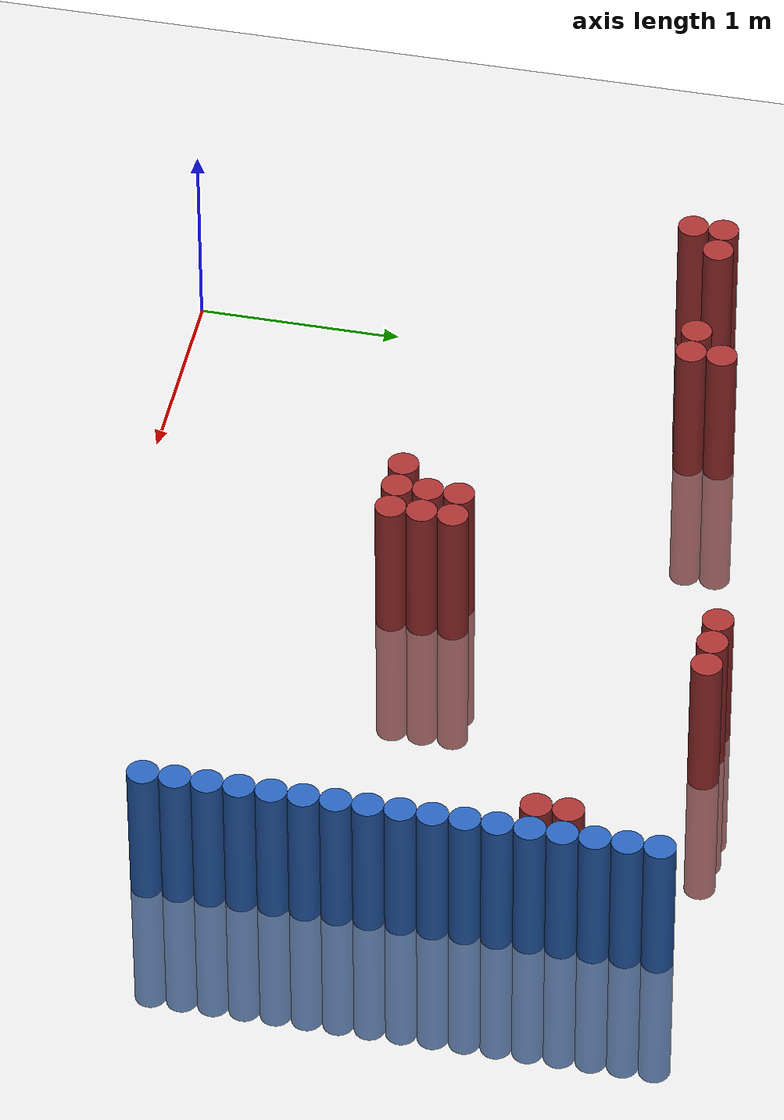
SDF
<sdf version="1.6">
 <world name="default">
  <model name="ground_plane">
   <static>1</static>
   <link name="link">
    <collision name="collision">
     <geometry><plane><normal>0 0 1</normal><size>100 100</size></plane></geometry>
     <surface><friction><ode><mu>100</mu><mu2>50</mu2></ode></friction></surface>
    </collision>
    <visual name="visual">
     <cast_shadows>0</cast_shadows>
     <geometry><plane><normal>0 0 1</normal><size>100 100</size></plane></geometry>
     <material>
      <script><uri>file://media/materials/scripts/gazebo.material</uri><name>Gazebo/Grey</name></script>
     </material>
    </visual>
   </link>
  </model>
  <model name="unit_cylinder_124">
   <static>1</static>
   <pose>3.925000 0.775000 0.000000 0.000000 0.000000 0.000000</pose>
   <link name="link">
    <inertial>
     <mass>1</mass>
     <inertia><ixx>0.145833</ixx><ixy>0</ixy><ixz>0</ixz><iyy>0.145833</iyy><iyz>0</iyz><izz>0.125</izz></inertia>
    </inertial>
    <collision name="collision">
     <geometry><cylinder><radius>0.075000</radius><length>1.5</length></cylinder></geometry>
    </collision>
    <visual name="visual">
     <geometry><cylinder><radius>0.075000</radius><length>1.5</length></cylinder></geometry>
     <material>
      <ambient>0.152000 0.379000 0.720000 1</ambient>
      <diffuse>0.152000 0.379000 0.720000 1</diffuse>
     </material>
     <material>
      <script><name>Gazebo/Grey</name><uri>file://media/materials/scripts/gazebo.material</uri></script>
     </material>
    </visual>
   </link>
  </model>
  <model name="unit_cylinder_126">
   <static>1</static>
   <pose>3.925000 0.925000 0.000000 0.000000 0.000000 0.000000</pose>
   <link name="link">
    <inertial>
     <mass>1</mass>
     <inertia><ixx>0.145833</ixx><ixy>0</ixy><ixz>0</ixz><iyy>0.145833</iyy><iyz>0</iyz><izz>0.125</izz></inertia>
    </inertial>
    <collision name="collision">
     <geometry><cylinder><radius>0.075000</radius><length>1.5</length></cylinder></geometry>
    </collision>
    <visual name="visual">
     <geometry><cylinder><radius>0.075000</radius><length>1.5</length></cylinder></geometry>
     <material>
      <ambient>0.152000 0.379000 0.720000 1</ambient>
      <diffuse>0.152000 0.379000 0.720000 1</diffuse>
     </material>
     <material>
      <script><name>Gazebo/Grey</name><uri>file://media/materials/scripts/gazebo.material</uri></script>
     </material>
    </visual>
   </link>
  </model>
  <model name="unit_cylinder_128">
   <static>1</static>
   <pose>3.925000 1.075000 0.000000 0.000000 0.000000 0.000000</pose>
   <link name="link">
    <inertial>
     <mass>1</mass>
     <inertia><ixx>0.145833</ixx><ixy>0</ixy><ixz>0</ixz><iyy>0.145833</iyy><iyz>0</iyz><izz>0.125</izz></inertia>
    </inertial>
    <collision name="collision">
     <geometry><cylinder><radius>0.075000</radius><length>1.5</length></cylinder></geometry>
    </collision>
    <visual name="visual">
     <geometry><cylinder><radius>0.075000</radius><length>1.5</length></cylinder></geometry>
     <material>
      <ambient>0.152000 0.379000 0.720000 1</ambient>
      <diffuse>0.152000 0.379000 0.720000 1</diffuse>
     </material>
     <material>
      <script><name>Gazebo/Grey</name><uri>file://media/materials/scripts/gazebo.material</uri></script>
     </material>
    </visual>
   </link>
  </model>
  <model name="unit_cylinder_130">
   <static>1</static>
   <pose>3.925000 1.225000 0.000000 0.000000 0.000000 0.000000</pose>
   <link name="link">
    <inertial>
     <mass>1</mass>
     <inertia><ixx>0.145833</ixx><ixy>0</ixy><ixz>0</ixz><iyy>0.145833</iyy><iyz>0</iyz><izz>0.125</izz></inertia>
    </inertial>
    <collision name="collision">
     <geometry><cylinder><radius>0.075000</radius><length>1.5</length></cylinder></geometry>
    </collision>
    <visual name="visual">
     <geometry><cylinder><radius>0.075000</radius><length>1.5</length></cylinder></geometry>
     <material>
      <ambient>0.152000 0.379000 0.720000 1</ambient>
      <diffuse>0.152000 0.379000 0.720000 1</diffuse>
     </material>
     <material>
      <script><name>Gazebo/Grey</name><uri>file://media/materials/scripts/gazebo.material</uri></script>
     </material>
    </visual>
   </link>
  </model>
  <model name="unit_cylinder_132">
   <static>1</static>
   <pose>3.925000 1.375000 0.000000 0.000000 0.000000 0.000000</pose>
   <link name="link">
    <inertial>
     <mass>1</mass>
     <inertia><ixx>0.145833</ixx><ixy>0</ixy><ixz>0</ixz><iyy>0.145833</iyy><iyz>0</iyz><izz>0.125</izz></inertia>
    </inertial>
    <collision name="collision">
     <geometry><cylinder><radius>0.075000</radius><length>1.5</length></cylinder></geometry>
    </collision>
    <visual name="visual">
     <geometry><cylinder><radius>0.075000</radius><length>1.5</length></cylinder></geometry>
     <material>
      <ambient>0.152000 0.379000 0.720000 1</ambient>
      <diffuse>0.152000 0.379000 0.720000 1</diffuse>
     </material>
     <material>
      <script><name>Gazebo/Grey</name><uri>file://media/materials/scripts/gazebo.material</uri></script>
     </material>
    </visual>
   </link>
  </model>
  <model name="unit_cylinder_134">
   <static>1</static>
   <pose>3.925000 1.525000 0.000000 0.000000 0.000000 0.000000</pose>
   <link name="link">
    <inertial>
     <mass>1</mass>
     <inertia><ixx>0.145833</ixx><ixy>0</ixy><ixz>0</ixz><iyy>0.145833</iyy><iyz>0</iyz><izz>0.125</izz></inertia>
    </inertial>
    <collision name="collision">
     <geometry><cylinder><radius>0.075000</radius><length>1.5</length></cylinder></geometry>
    </collision>
    <visual name="visual">
     <geometry><cylinder><radius>0.075000</radius><length>1.5</length></cylinder></geometry>
     <material>
      <ambient>0.152000 0.379000 0.720000 1</ambient>
      <diffuse>0.152000 0.379000 0.720000 1</diffuse>
     </material>
     <material>
      <script><name>Gazebo/Grey</name><uri>file://media/materials/scripts/gazebo.material</uri></script>
     </material>
    </visual>
   </link>
  </model>
  <model name="unit_cylinder_136">
   <static>1</static>
   <pose>3.925000 1.675000 0.000000 0.000000 0.000000 0.000000</pose>
   <link name="link">
    <inertial>
     <mass>1</mass>
     <inertia><ixx>0.145833</ixx><ixy>0</ixy><ixz>0</ixz><iyy>0.145833</iyy><iyz>0</iyz><izz>0.125</izz></inertia>
    </inertial>
    <collision name="collision">
     <geometry><cylinder><radius>0.075000</radius><length>1.5</length></cylinder></geometry>
    </collision>
    <visual name="visual">
     <geometry><cylinder><radius>0.075000</radius><length>1.5</length></cylinder></geometry>
     <material>
      <ambient>0.152000 0.379000 0.720000 1</ambient>
      <diffuse>0.152000 0.379000 0.720000 1</diffuse>
     </material>
     <material>
      <script><name>Gazebo/Grey</name><uri>file://media/materials/scripts/gazebo.material</uri></script>
     </material>
    </visual>
   </link>
  </model>
  <model name="unit_cylinder_138">
   <static>1</static>
   <pose>3.925000 1.825000 0.000000 0.000000 0.000000 0.000000</pose>
   <link name="link">
    <inertial>
     <mass>1</mass>
     <inertia><ixx>0.145833</ixx><ixy>0</ixy><ixz>0</ixz><iyy>0.145833</iyy><iyz>0</iyz><izz>0.125</izz></inertia>
    </inertial>
    <collision name="collision">
     <geometry><cylinder><radius>0.075000</radius><length>1.5</length></cylinder></geometry>
    </collision>
    <visual name="visual">
     <geometry><cylinder><radius>0.075000</radius><length>1.5</length></cylinder></geometry>
     <material>
      <ambient>0.152000 0.379000 0.720000 1</ambient>
      <diffuse>0.152000 0.379000 0.720000 1</diffuse>
     </material>
     <material>
      <script><name>Gazebo/Grey</name><uri>file://media/materials/scripts/gazebo.material</uri></script>
     </material>
    </visual>
   </link>
  </model>
  <model name="unit_cylinder_140">
   <static>1</static>
   <pose>3.925000 1.975000 0.000000 0.000000 0.000000 0.000000</pose>
   <link name="link">
    <inertial>
     <mass>1</mass>
     <inertia><ixx>0.145833</ixx><ixy>0</ixy><ixz>0</ixz><iyy>0.145833</iyy><iyz>0</iyz><izz>0.125</izz></inertia>
    </inertial>
    <collision name="collision">
     <geometry><cylinder><radius>0.075000</radius><length>1.5</length></cylinder></geometry>
    </collision>
    <visual name="visual">
     <geometry><cylinder><radius>0.075000</radius><length>1.5</length></cylinder></geometry>
     <material>
      <ambient>0.152000 0.379000 0.720000 1</ambient>
      <diffuse>0.152000 0.379000 0.720000 1</diffuse>
     </material>
     <material>
      <script><name>Gazebo/Grey</name><uri>file://media/materials/scripts/gazebo.material</uri></script>
     </material>
    </visual>
   </link>
  </model>
  <model name="unit_cylinder_142">
   <static>1</static>
   <pose>3.925000 2.125000 0.000000 0.000000 0.000000 0.000000</pose>
   <link name="link">
    <inertial>
     <mass>1</mass>
     <inertia><ixx>0.145833</ixx><ixy>0</ixy><ixz>0</ixz><iyy>0.145833</iyy><iyz>0</iyz><izz>0.125</izz></inertia>
    </inertial>
    <collision name="collision">
     <geometry><cylinder><radius>0.075000</radius><length>1.5</length></cylinder></geometry>
    </collision>
    <visual name="visual">
     <geometry><cylinder><radius>0.075000</radius><length>1.5</length></cylinder></geometry>
     <material>
      <ambient>0.152000 0.379000 0.720000 1</ambient>
      <diffuse>0.152000 0.379000 0.720000 1</diffuse>
     </material>
     <material>
      <script><name>Gazebo/Grey</name><uri>file://media/materials/scripts/gazebo.material</uri></script>
     </material>
    </visual>
   </link>
  </model>
  <model name="unit_cylinder_144">
   <static>1</static>
   <pose>3.925000 2.275000 0.000000 0.000000 0.000000 0.000000</pose>
   <link name="link">
    <inertial>
     <mass>1</mass>
     <inertia><ixx>0.145833</ixx><ixy>0</ixy><ixz>0</ixz><iyy>0.145833</iyy><iyz>0</iyz><izz>0.125</izz></inertia>
    </inertial>
    <collision name="collision">
     <geometry><cylinder><radius>0.075000</radius><length>1.5</length></cylinder></geometry>
    </collision>
    <visual name="visual">
     <geometry><cylinder><radius>0.075000</radius><length>1.5</length></cylinder></geometry>
     <material>
      <ambient>0.152000 0.379000 0.720000 1</ambient>
      <diffuse>0.152000 0.379000 0.720000 1</diffuse>
     </material>
     <material>
      <script><name>Gazebo/Grey</name><uri>file://media/materials/scripts/gazebo.material</uri></script>
     </material>
    </visual>
   </link>
  </model>
  <model name="unit_cylinder_146">
   <static>1</static>
   <pose>3.925000 2.425000 0.000000 0.000000 0.000000 0.000000</pose>
   <link name="link">
    <inertial>
     <mass>1</mass>
     <inertia><ixx>0.145833</ixx><ixy>0</ixy><ixz>0</ixz><iyy>0.145833</iyy><iyz>0</iyz><izz>0.125</izz></inertia>
    </inertial>
    <collision name="collision">
     <geometry><cylinder><radius>0.075000</radius><length>1.5</length></cylinder></geometry>
    </collision>
    <visual name="visual">
     <geometry><cylinder><radius>0.075000</radius><length>1.5</length></cylinder></geometry>
     <material>
      <ambient>0.152000 0.379000 0.720000 1</ambient>
      <diffuse>0.152000 0.379000 0.720000 1</diffuse>
     </material>
     <material>
      <script><name>Gazebo/Grey</name><uri>file://media/materials/scripts/gazebo.material</uri></script>
     </material>
    </visual>
   </link>
  </model>
  <model name="unit_cylinder_148">
   <static>1</static>
   <pose>3.925000 2.575000 0.000000 0.000000 0.000000 0.000000</pose>
   <link name="link">
    <inertial>
     <mass>1</mass>
     <inertia><ixx>0.145833</ixx><ixy>0</ixy><ixz>0</ixz><iyy>0.145833</iyy><iyz>0</iyz><izz>0.125</izz></inertia>
    </inertial>
    <collision name="collision">
     <geometry><cylinder><radius>0.075000</radius><length>1.5</length></cylinder></geometry>
    </collision>
    <visual name="visual">
     <geometry><cylinder><radius>0.075000</radius><length>1.5</length></cylinder></geometry>
     <material>
      <ambient>0.152000 0.379000 0.720000 1</ambient>
      <diffuse>0.152000 0.379000 0.720000 1</diffuse>
     </material>
     <material>
      <script><name>Gazebo/Grey</name><uri>file://media/materials/scripts/gazebo.material</uri></script>
     </material>
    </visual>
   </link>
  </model>
  <model name="unit_cylinder_150">
   <static>1</static>
   <pose>3.925000 2.725000 0.000000 0.000000 0.000000 0.000000</pose>
   <link name="link">
    <inertial>
     <mass>1</mass>
     <inertia><ixx>0.145833</ixx><ixy>0</ixy><ixz>0</ixz><iyy>0.145833</iyy><iyz>0</iyz><izz>0.125</izz></inertia>
    </inertial>
    <collision name="collision">
     <geometry><cylinder><radius>0.075000</radius><length>1.5</length></cylinder></geometry>
    </collision>
    <visual name="visual">
     <geometry><cylinder><radius>0.075000</radius><length>1.5</length></cylinder></geometry>
     <material>
      <ambient>0.152000 0.379000 0.720000 1</ambient>
      <diffuse>0.152000 0.379000 0.720000 1</diffuse>
     </material>
     <material>
      <script><name>Gazebo/Grey</name><uri>file://media/materials/scripts/gazebo.material</uri></script>
     </material>
    </visual>
   </link>
  </model>
  <model name="unit_cylinder_152">
   <static>1</static>
   <pose>3.925000 2.875000 0.000000 0.000000 0.000000 0.000000</pose>
   <link name="link">
    <inertial>
     <mass>1</mass>
     <inertia><ixx>0.145833</ixx><ixy>0</ixy><ixz>0</ixz><iyy>0.145833</iyy><iyz>0</iyz><izz>0.125</izz></inertia>
    </inertial>
    <collision name="collision">
     <geometry><cylinder><radius>0.075000</radius><length>1.5</length></cylinder></geometry>
    </collision>
    <visual name="visual">
     <geometry><cylinder><radius>0.075000</radius><length>1.5</length></cylinder></geometry>
     <material>
      <ambient>0.152000 0.379000 0.720000 1</ambient>
      <diffuse>0.152000 0.379000 0.720000 1</diffuse>
     </material>
     <material>
      <script><name>Gazebo/Grey</name><uri>file://media/materials/scripts/gazebo.material</uri></script>
     </material>
    </visual>
   </link>
  </model>
  <model name="unit_cylinder_154">
   <static>1</static>
   <pose>3.925000 3.025000 0.000000 0.000000 0.000000 0.000000</pose>
   <link name="link">
    <inertial>
     <mass>1</mass>
     <inertia><ixx>0.145833</ixx><ixy>0</ixy><ixz>0</ixz><iyy>0.145833</iyy><iyz>0</iyz><izz>0.125</izz></inertia>
    </inertial>
    <collision name="collision">
     <geometry><cylinder><radius>0.075000</radius><length>1.5</length></cylinder></geometry>
    </collision>
    <visual name="visual">
     <geometry><cylinder><radius>0.075000</radius><length>1.5</length></cylinder></geometry>
     <material>
      <ambient>0.152000 0.379000 0.720000 1</ambient>
      <diffuse>0.152000 0.379000 0.720000 1</diffuse>
     </material>
     <material>
      <script><name>Gazebo/Grey</name><uri>file://media/materials/scripts/gazebo.material</uri></script>
     </material>
    </visual>
   </link>
  </model>
  <model name="unit_cylinder_395">
   <static>1</static>
   <pose>-0.275000 2.425000 0.000000 0.000000 0.000000 0.000000</pose>
   <link name="link">
    <inertial>
     <mass>1</mass>
     <inertia><ixx>0.145833</ixx><ixy>0</ixy><ixz>0</ixz><iyy>0.145833</iyy><iyz>0</iyz><izz>0.125</izz></inertia>
    </inertial>
    <collision name="collision">
     <geometry><cylinder><radius>0.075000</radius><length>1.5</length></cylinder></geometry>
    </collision>
    <visual name="visual">
     <geometry><cylinder><radius>0.075000</radius><length>1.5</length></cylinder></geometry>
     <material>
      <ambient>0.648000 0.192000 0.192000 1</ambient>
      <diffuse>0.648000 0.192000 0.192000 1</diffuse>
     </material>
     <material>
      <script><name>Gazebo/Grey</name><uri>file://media/materials/scripts/gazebo.material</uri></script>
     </material>
    </visual>
   </link>
  </model>
  <model name="unit_cylinder_396">
   <static>1</static>
   <pose>-0.275000 2.575000 0.000000 0.000000 0.000000 0.000000</pose>
   <link name="link">
    <inertial>
     <mass>1</mass>
     <inertia><ixx>0.145833</ixx><ixy>0</ixy><ixz>0</ixz><iyy>0.145833</iyy><iyz>0</iyz><izz>0.125</izz></inertia>
    </inertial>
    <collision name="collision">
     <geometry><cylinder><radius>0.075000</radius><length>1.5</length></cylinder></geometry>
    </collision>
    <visual name="visual">
     <geometry><cylinder><radius>0.075000</radius><length>1.5</length></cylinder></geometry>
     <material>
      <ambient>0.648000 0.192000 0.192000 1</ambient>
      <diffuse>0.648000 0.192000 0.192000 1</diffuse>
     </material>
     <material>
      <script><name>Gazebo/Grey</name><uri>file://media/materials/scripts/gazebo.material</uri></script>
     </material>
    </visual>
   </link>
  </model>
  <model name="unit_cylinder_400">
   <static>1</static>
   <pose>-0.125000 2.575000 0.000000 0.000000 0.000000 0.000000</pose>
   <link name="link">
    <inertial>
     <mass>1</mass>
     <inertia><ixx>0.145833</ixx><ixy>0</ixy><ixz>0</ixz><iyy>0.145833</iyy><iyz>0</iyz><izz>0.125</izz></inertia>
    </inertial>
    <collision name="collision">
     <geometry><cylinder><radius>0.075000</radius><length>1.5</length></cylinder></geometry>
    </collision>
    <visual name="visual">
     <geometry><cylinder><radius>0.075000</radius><length>1.5</length></cylinder></geometry>
     <material>
      <ambient>0.648000 0.192000 0.192000 1</ambient>
      <diffuse>0.648000 0.192000 0.192000 1</diffuse>
     </material>
     <material>
      <script><name>Gazebo/Grey</name><uri>file://media/materials/scripts/gazebo.material</uri></script>
     </material>
    </visual>
   </link>
  </model>
  <model name="unit_cylinder_420">
   <static>1</static>
   <pose>0.475000 2.575000 0.000000 0.000000 0.000000 0.000000</pose>
   <link name="link">
    <inertial>
     <mass>1</mass>
     <inertia><ixx>0.145833</ixx><ixy>0</ixy><ixz>0</ixz><iyy>0.145833</iyy><iyz>0</iyz><izz>0.125</izz></inertia>
    </inertial>
    <collision name="collision">
     <geometry><cylinder><radius>0.075000</radius><length>1.5</length></cylinder></geometry>
    </collision>
    <visual name="visual">
     <geometry><cylinder><radius>0.075000</radius><length>1.5</length></cylinder></geometry>
     <material>
      <ambient>0.648000 0.192000 0.192000 1</ambient>
      <diffuse>0.648000 0.192000 0.192000 1</diffuse>
     </material>
     <material>
      <script><name>Gazebo/Grey</name><uri>file://media/materials/scripts/gazebo.material</uri></script>
     </material>
    </visual>
   </link>
  </model>
  <model name="unit_cylinder_422">
   <static>1</static>
   <pose>0.625000 2.575000 0.000000 0.000000 0.000000 0.000000</pose>
   <link name="link">
    <inertial>
     <mass>1</mass>
     <inertia><ixx>0.145833</ixx><ixy>0</ixy><ixz>0</ixz><iyy>0.145833</iyy><iyz>0</iyz><izz>0.125</izz></inertia>
    </inertial>
    <collision name="collision">
     <geometry><cylinder><radius>0.075000</radius><length>1.5</length></cylinder></geometry>
    </collision>
    <visual name="visual">
     <geometry><cylinder><radius>0.075000</radius><length>1.5</length></cylinder></geometry>
     <material>
      <ambient>0.648000 0.192000 0.192000 1</ambient>
      <diffuse>0.648000 0.192000 0.192000 1</diffuse>
     </material>
     <material>
      <script><name>Gazebo/Grey</name><uri>file://media/materials/scripts/gazebo.material</uri></script>
     </material>
    </visual>
   </link>
  </model>
  <model name="unit_cylinder_423">
   <static>1</static>
   <pose>0.625000 2.725000 0.000000 0.000000 0.000000 0.000000</pose>
   <link name="link">
    <inertial>
     <mass>1</mass>
     <inertia><ixx>0.145833</ixx><ixy>0</ixy><ixz>0</ixz><iyy>0.145833</iyy><iyz>0</iyz><izz>0.125</izz></inertia>
    </inertial>
    <collision name="collision">
     <geometry><cylinder><radius>0.075000</radius><length>1.5</length></cylinder></geometry>
    </collision>
    <visual name="visual">
     <geometry><cylinder><radius>0.075000</radius><length>1.5</length></cylinder></geometry>
     <material>
      <ambient>0.648000 0.192000 0.192000 1</ambient>
      <diffuse>0.648000 0.192000 0.192000 1</diffuse>
     </material>
     <material>
      <script><name>Gazebo/Grey</name><uri>file://media/materials/scripts/gazebo.material</uri></script>
     </material>
    </visual>
   </link>
  </model>
  <model name="unit_cylinder_427">
   <static>1</static>
   <pose>1.675000 1.375000 0.000000 0.000000 0.000000 0.000000</pose>
   <link name="link">
    <inertial>
     <mass>1</mass>
     <inertia><ixx>0.145833</ixx><ixy>0</ixy><ixz>0</ixz><iyy>0.145833</iyy><iyz>0</iyz><izz>0.125</izz></inertia>
    </inertial>
    <collision name="collision">
     <geometry><cylinder><radius>0.075000</radius><length>1.5</length></cylinder></geometry>
    </collision>
    <visual name="visual">
     <geometry><cylinder><radius>0.075000</radius><length>1.5</length></cylinder></geometry>
     <material>
      <ambient>0.648000 0.192000 0.192000 1</ambient>
      <diffuse>0.648000 0.192000 0.192000 1</diffuse>
     </material>
     <material>
      <script><name>Gazebo/Grey</name><uri>file://media/materials/scripts/gazebo.material</uri></script>
     </material>
    </visual>
   </link>
  </model>
  <model name="unit_cylinder_429">
   <static>1</static>
   <pose>1.825000 1.375000 0.000000 0.000000 0.000000 0.000000</pose>
   <link name="link">
    <inertial>
     <mass>1</mass>
     <inertia><ixx>0.145833</ixx><ixy>0</ixy><ixz>0</ixz><iyy>0.145833</iyy><iyz>0</iyz><izz>0.125</izz></inertia>
    </inertial>
    <collision name="collision">
     <geometry><cylinder><radius>0.075000</radius><length>1.5</length></cylinder></geometry>
    </collision>
    <visual name="visual">
     <geometry><cylinder><radius>0.075000</radius><length>1.5</length></cylinder></geometry>
     <material>
      <ambient>0.648000 0.192000 0.192000 1</ambient>
      <diffuse>0.648000 0.192000 0.192000 1</diffuse>
     </material>
     <material>
      <script><name>Gazebo/Grey</name><uri>file://media/materials/scripts/gazebo.material</uri></script>
     </material>
    </visual>
   </link>
  </model>
  <model name="unit_cylinder_430">
   <static>1</static>
   <pose>1.825000 1.525000 0.000000 0.000000 0.000000 0.000000</pose>
   <link name="link">
    <inertial>
     <mass>1</mass>
     <inertia><ixx>0.145833</ixx><ixy>0</ixy><ixz>0</ixz><iyy>0.145833</iyy><iyz>0</iyz><izz>0.125</izz></inertia>
    </inertial>
    <collision name="collision">
     <geometry><cylinder><radius>0.075000</radius><length>1.5</length></cylinder></geometry>
    </collision>
    <visual name="visual">
     <geometry><cylinder><radius>0.075000</radius><length>1.5</length></cylinder></geometry>
     <material>
      <ambient>0.648000 0.192000 0.192000 1</ambient>
      <diffuse>0.648000 0.192000 0.192000 1</diffuse>
     </material>
     <material>
      <script><name>Gazebo/Grey</name><uri>file://media/materials/scripts/gazebo.material</uri></script>
     </material>
    </visual>
   </link>
  </model>
  <model name="unit_cylinder_431">
   <static>1</static>
   <pose>1.825000 1.675000 0.000000 0.000000 0.000000 0.000000</pose>
   <link name="link">
    <inertial>
     <mass>1</mass>
     <inertia><ixx>0.145833</ixx><ixy>0</ixy><ixz>0</ixz><iyy>0.145833</iyy><iyz>0</iyz><izz>0.125</izz></inertia>
    </inertial>
    <collision name="collision">
     <geometry><cylinder><radius>0.075000</radius><length>1.5</length></cylinder></geometry>
    </collision>
    <visual name="visual">
     <geometry><cylinder><radius>0.075000</radius><length>1.5</length></cylinder></geometry>
     <material>
      <ambient>0.648000 0.192000 0.192000 1</ambient>
      <diffuse>0.648000 0.192000 0.192000 1</diffuse>
     </material>
     <material>
      <script><name>Gazebo/Grey</name><uri>file://media/materials/scripts/gazebo.material</uri></script>
     </material>
    </visual>
   </link>
  </model>
  <model name="unit_cylinder_438">
   <static>1</static>
   <pose>1.975000 1.375000 0.000000 0.000000 0.000000 0.000000</pose>
   <link name="link">
    <inertial>
     <mass>1</mass>
     <inertia><ixx>0.145833</ixx><ixy>0</ixy><ixz>0</ixz><iyy>0.145833</iyy><iyz>0</iyz><izz>0.125</izz></inertia>
    </inertial>
    <collision name="collision">
     <geometry><cylinder><radius>0.075000</radius><length>1.5</length></cylinder></geometry>
    </collision>
    <visual name="visual">
     <geometry><cylinder><radius>0.075000</radius><length>1.5</length></cylinder></geometry>
     <material>
      <ambient>0.648000 0.192000 0.192000 1</ambient>
      <diffuse>0.648000 0.192000 0.192000 1</diffuse>
     </material>
     <material>
      <script><name>Gazebo/Grey</name><uri>file://media/materials/scripts/gazebo.material</uri></script>
     </material>
    </visual>
   </link>
  </model>
  <model name="unit_cylinder_439">
   <static>1</static>
   <pose>1.975000 1.525000 0.000000 0.000000 0.000000 0.000000</pose>
   <link name="link">
    <inertial>
     <mass>1</mass>
     <inertia><ixx>0.145833</ixx><ixy>0</ixy><ixz>0</ixz><iyy>0.145833</iyy><iyz>0</iyz><izz>0.125</izz></inertia>
    </inertial>
    <collision name="collision">
     <geometry><cylinder><radius>0.075000</radius><length>1.5</length></cylinder></geometry>
    </collision>
    <visual name="visual">
     <geometry><cylinder><radius>0.075000</radius><length>1.5</length></cylinder></geometry>
     <material>
      <ambient>0.648000 0.192000 0.192000 1</ambient>
      <diffuse>0.648000 0.192000 0.192000 1</diffuse>
     </material>
     <material>
      <script><name>Gazebo/Grey</name><uri>file://media/materials/scripts/gazebo.material</uri></script>
     </material>
    </visual>
   </link>
  </model>
  <model name="unit_cylinder_440">
   <static>1</static>
   <pose>1.975000 1.675000 0.000000 0.000000 0.000000 0.000000</pose>
   <link name="link">
    <inertial>
     <mass>1</mass>
     <inertia><ixx>0.145833</ixx><ixy>0</ixy><ixz>0</ixz><iyy>0.145833</iyy><iyz>0</iyz><izz>0.125</izz></inertia>
    </inertial>
    <collision name="collision">
     <geometry><cylinder><radius>0.075000</radius><length>1.5</length></cylinder></geometry>
    </collision>
    <visual name="visual">
     <geometry><cylinder><radius>0.075000</radius><length>1.5</length></cylinder></geometry>
     <material>
      <ambient>0.648000 0.192000 0.192000 1</ambient>
      <diffuse>0.648000 0.192000 0.192000 1</diffuse>
     </material>
     <material>
      <script><name>Gazebo/Grey</name><uri>file://media/materials/scripts/gazebo.material</uri></script>
     </material>
    </visual>
   </link>
  </model>
  <model name="unit_cylinder_448">
   <static>1</static>
   <pose>2.425000 3.025000 0.000000 0.000000 0.000000 0.000000</pose>
   <link name="link">
    <inertial>
     <mass>1</mass>
     <inertia><ixx>0.145833</ixx><ixy>0</ixy><ixz>0</ixz><iyy>0.145833</iyy><iyz>0</iyz><izz>0.125</izz></inertia>
    </inertial>
    <collision name="collision">
     <geometry><cylinder><radius>0.075000</radius><length>1.5</length></cylinder></geometry>
    </collision>
    <visual name="visual">
     <geometry><cylinder><radius>0.075000</radius><length>1.5</length></cylinder></geometry>
     <material>
      <ambient>0.648000 0.192000 0.192000 1</ambient>
      <diffuse>0.648000 0.192000 0.192000 1</diffuse>
     </material>
     <material>
      <script><name>Gazebo/Grey</name><uri>file://media/materials/scripts/gazebo.material</uri></script>
     </material>
    </visual>
   </link>
  </model>
  <model name="unit_cylinder_453">
   <static>1</static>
   <pose>2.575000 3.025000 0.000000 0.000000 0.000000 0.000000</pose>
   <link name="link">
    <inertial>
     <mass>1</mass>
     <inertia><ixx>0.145833</ixx><ixy>0</ixy><ixz>0</ixz><iyy>0.145833</iyy><iyz>0</iyz><izz>0.125</izz></inertia>
    </inertial>
    <collision name="collision">
     <geometry><cylinder><radius>0.075000</radius><length>1.5</length></cylinder></geometry>
    </collision>
    <visual name="visual">
     <geometry><cylinder><radius>0.075000</radius><length>1.5</length></cylinder></geometry>
     <material>
      <ambient>0.648000 0.192000 0.192000 1</ambient>
      <diffuse>0.648000 0.192000 0.192000 1</diffuse>
     </material>
     <material>
      <script><name>Gazebo/Grey</name><uri>file://media/materials/scripts/gazebo.material</uri></script>
     </material>
    </visual>
   </link>
  </model>
  <model name="unit_cylinder_458">
   <static>1</static>
   <pose>2.725000 3.025000 0.000000 0.000000 0.000000 0.000000</pose>
   <link name="link">
    <inertial>
     <mass>1</mass>
     <inertia><ixx>0.145833</ixx><ixy>0</ixy><ixz>0</ixz><iyy>0.145833</iyy><iyz>0</iyz><izz>0.125</izz></inertia>
    </inertial>
    <collision name="collision">
     <geometry><cylinder><radius>0.075000</radius><length>1.5</length></cylinder></geometry>
    </collision>
    <visual name="visual">
     <geometry><cylinder><radius>0.075000</radius><length>1.5</length></cylinder></geometry>
     <material>
      <ambient>0.648000 0.192000 0.192000 1</ambient>
      <diffuse>0.648000 0.192000 0.192000 1</diffuse>
     </material>
     <material>
      <script><name>Gazebo/Grey</name><uri>file://media/materials/scripts/gazebo.material</uri></script>
     </material>
    </visual>
   </link>
  </model>
  <model name="unit_cylinder_492">
   <static>1</static>
   <pose>3.775000 2.425000 0.000000 0.000000 0.000000 0.000000</pose>
   <link name="link">
    <inertial>
     <mass>1</mass>
     <inertia><ixx>0.145833</ixx><ixy>0</ixy><ixz>0</ixz><iyy>0.145833</iyy><iyz>0</iyz><izz>0.125</izz></inertia>
    </inertial>
    <collision name="collision">
     <geometry><cylinder><radius>0.075000</radius><length>1.5</length></cylinder></geometry>
    </collision>
    <visual name="visual">
     <geometry><cylinder><radius>0.075000</radius><length>1.5</length></cylinder></geometry>
     <material>
      <ambient>0.648000 0.192000 0.192000 1</ambient>
      <diffuse>0.648000 0.192000 0.192000 1</diffuse>
     </material>
     <material>
      <script><name>Gazebo/Grey</name><uri>file://media/materials/scripts/gazebo.material</uri></script>
     </material>
    </visual>
   </link>
  </model>
  <model name="unit_cylinder_493">
   <static>1</static>
   <pose>3.775000 2.575000 0.000000 0.000000 0.000000 0.000000</pose>
   <link name="link">
    <inertial>
     <mass>1</mass>
     <inertia><ixx>0.145833</ixx><ixy>0</ixy><ixz>0</ixz><iyy>0.145833</iyy><iyz>0</iyz><izz>0.125</izz></inertia>
    </inertial>
    <collision name="collision">
     <geometry><cylinder><radius>0.075000</radius><length>1.5</length></cylinder></geometry>
    </collision>
    <visual name="visual">
     <geometry><cylinder><radius>0.075000</radius><length>1.5</length></cylinder></geometry>
     <material>
      <ambient>0.648000 0.192000 0.192000 1</ambient>
      <diffuse>0.648000 0.192000 0.192000 1</diffuse>
     </material>
     <material>
      <script><name>Gazebo/Grey</name><uri>file://media/materials/scripts/gazebo.material</uri></script>
     </material>
    </visual>
   </link>
  </model>
  <model name="unit_cylinder_525">
   <static>1</static>
   <pose>3.925000 0.625000 0.000000 0.000000 0.000000 0.000000</pose>
   <link name="link">
    <inertial>
     <mass>1</mass>
     <inertia><ixx>0.145833</ixx><ixy>0</ixy><ixz>0</ixz><iyy>0.145833</iyy><iyz>0</iyz><izz>0.125</izz></inertia>
    </inertial>
    <collision name="collision">
     <geometry><cylinder><radius>0.075000</radius><length>1.5</length></cylinder></geometry>
    </collision>
    <visual name="visual">
     <geometry><cylinder><radius>0.075000</radius><length>1.5</length></cylinder></geometry>
     <material>
      <ambient>0.152000 0.379000 0.720000 1</ambient>
      <diffuse>0.152000 0.379000 0.720000 1</diffuse>
     </material>
     <material>
      <script><name>Gazebo/Grey</name><uri>file://media/materials/scripts/gazebo.material</uri></script>
     </material>
    </visual>
   </link>
  </model>
  <model name="unit_cylinder_526">
   <static>1</static>
   <pose>3.925000 0.775000 0.000000 0.000000 0.000000 0.000000</pose>
   <link name="link">
    <inertial>
     <mass>1</mass>
     <inertia><ixx>0.145833</ixx><ixy>0</ixy><ixz>0</ixz><iyy>0.145833</iyy><iyz>0</iyz><izz>0.125</izz></inertia>
    </inertial>
    <collision name="collision">
     <geometry><cylinder><radius>0.075000</radius><length>1.5</length></cylinder></geometry>
    </collision>
    <visual name="visual">
     <geometry><cylinder><radius>0.075000</radius><length>1.5</length></cylinder></geometry>
     <material>
      <ambient>0.152000 0.379000 0.720000 1</ambient>
      <diffuse>0.152000 0.379000 0.720000 1</diffuse>
     </material>
     <material>
      <script><name>Gazebo/Grey</name><uri>file://media/materials/scripts/gazebo.material</uri></script>
     </material>
    </visual>
   </link>
  </model>
  <model name="unit_cylinder_527">
   <static>1</static>
   <pose>3.925000 0.925000 0.000000 0.000000 0.000000 0.000000</pose>
   <link name="link">
    <inertial>
     <mass>1</mass>
     <inertia><ixx>0.145833</ixx><ixy>0</ixy><ixz>0</ixz><iyy>0.145833</iyy><iyz>0</iyz><izz>0.125</izz></inertia>
    </inertial>
    <collision name="collision">
     <geometry><cylinder><radius>0.075000</radius><length>1.5</length></cylinder></geometry>
    </collision>
    <visual name="visual">
     <geometry><cylinder><radius>0.075000</radius><length>1.5</length></cylinder></geometry>
     <material>
      <ambient>0.152000 0.379000 0.720000 1</ambient>
      <diffuse>0.152000 0.379000 0.720000 1</diffuse>
     </material>
     <material>
      <script><name>Gazebo/Grey</name><uri>file://media/materials/scripts/gazebo.material</uri></script>
     </material>
    </visual>
   </link>
  </model>
  <model name="unit_cylinder_528">
   <static>1</static>
   <pose>3.925000 1.075000 0.000000 0.000000 0.000000 0.000000</pose>
   <link name="link">
    <inertial>
     <mass>1</mass>
     <inertia><ixx>0.145833</ixx><ixy>0</ixy><ixz>0</ixz><iyy>0.145833</iyy><iyz>0</iyz><izz>0.125</izz></inertia>
    </inertial>
    <collision name="collision">
     <geometry><cylinder><radius>0.075000</radius><length>1.5</length></cylinder></geometry>
    </collision>
    <visual name="visual">
     <geometry><cylinder><radius>0.075000</radius><length>1.5</length></cylinder></geometry>
     <material>
      <ambient>0.152000 0.379000 0.720000 1</ambient>
      <diffuse>0.152000 0.379000 0.720000 1</diffuse>
     </material>
     <material>
      <script><name>Gazebo/Grey</name><uri>file://media/materials/scripts/gazebo.material</uri></script>
     </material>
    </visual>
   </link>
  </model>
  <model name="unit_cylinder_529">
   <static>1</static>
   <pose>3.925000 1.225000 0.000000 0.000000 0.000000 0.000000</pose>
   <link name="link">
    <inertial>
     <mass>1</mass>
     <inertia><ixx>0.145833</ixx><ixy>0</ixy><ixz>0</ixz><iyy>0.145833</iyy><iyz>0</iyz><izz>0.125</izz></inertia>
    </inertial>
    <collision name="collision">
     <geometry><cylinder><radius>0.075000</radius><length>1.5</length></cylinder></geometry>
    </collision>
    <visual name="visual">
     <geometry><cylinder><radius>0.075000</radius><length>1.5</length></cylinder></geometry>
     <material>
      <ambient>0.152000 0.379000 0.720000 1</ambient>
      <diffuse>0.152000 0.379000 0.720000 1</diffuse>
     </material>
     <material>
      <script><name>Gazebo/Grey</name><uri>file://media/materials/scripts/gazebo.material</uri></script>
     </material>
    </visual>
   </link>
  </model>
  <model name="unit_cylinder_530">
   <static>1</static>
   <pose>3.925000 1.375000 0.000000 0.000000 0.000000 0.000000</pose>
   <link name="link">
    <inertial>
     <mass>1</mass>
     <inertia><ixx>0.145833</ixx><ixy>0</ixy><ixz>0</ixz><iyy>0.145833</iyy><iyz>0</iyz><izz>0.125</izz></inertia>
    </inertial>
    <collision name="collision">
     <geometry><cylinder><radius>0.075000</radius><length>1.5</length></cylinder></geometry>
    </collision>
    <visual name="visual">
     <geometry><cylinder><radius>0.075000</radius><length>1.5</length></cylinder></geometry>
     <material>
      <ambient>0.152000 0.379000 0.720000 1</ambient>
      <diffuse>0.152000 0.379000 0.720000 1</diffuse>
     </material>
     <material>
      <script><name>Gazebo/Grey</name><uri>file://media/materials/scripts/gazebo.material</uri></script>
     </material>
    </visual>
   </link>
  </model>
  <model name="unit_cylinder_531">
   <static>1</static>
   <pose>3.925000 1.525000 0.000000 0.000000 0.000000 0.000000</pose>
   <link name="link">
    <inertial>
     <mass>1</mass>
     <inertia><ixx>0.145833</ixx><ixy>0</ixy><ixz>0</ixz><iyy>0.145833</iyy><iyz>0</iyz><izz>0.125</izz></inertia>
    </inertial>
    <collision name="collision">
     <geometry><cylinder><radius>0.075000</radius><length>1.5</length></cylinder></geometry>
    </collision>
    <visual name="visual">
     <geometry><cylinder><radius>0.075000</radius><length>1.5</length></cylinder></geometry>
     <material>
      <ambient>0.152000 0.379000 0.720000 1</ambient>
      <diffuse>0.152000 0.379000 0.720000 1</diffuse>
     </material>
     <material>
      <script><name>Gazebo/Grey</name><uri>file://media/materials/scripts/gazebo.material</uri></script>
     </material>
    </visual>
   </link>
  </model>
  <model name="unit_cylinder_532">
   <static>1</static>
   <pose>3.925000 1.675000 0.000000 0.000000 0.000000 0.000000</pose>
   <link name="link">
    <inertial>
     <mass>1</mass>
     <inertia><ixx>0.145833</ixx><ixy>0</ixy><ixz>0</ixz><iyy>0.145833</iyy><iyz>0</iyz><izz>0.125</izz></inertia>
    </inertial>
    <collision name="collision">
     <geometry><cylinder><radius>0.075000</radius><length>1.5</length></cylinder></geometry>
    </collision>
    <visual name="visual">
     <geometry><cylinder><radius>0.075000</radius><length>1.5</length></cylinder></geometry>
     <material>
      <ambient>0.152000 0.379000 0.720000 1</ambient>
      <diffuse>0.152000 0.379000 0.720000 1</diffuse>
     </material>
     <material>
      <script><name>Gazebo/Grey</name><uri>file://media/materials/scripts/gazebo.material</uri></script>
     </material>
    </visual>
   </link>
  </model>
  <model name="unit_cylinder_533">
   <static>1</static>
   <pose>3.925000 1.825000 0.000000 0.000000 0.000000 0.000000</pose>
   <link name="link">
    <inertial>
     <mass>1</mass>
     <inertia><ixx>0.145833</ixx><ixy>0</ixy><ixz>0</ixz><iyy>0.145833</iyy><iyz>0</iyz><izz>0.125</izz></inertia>
    </inertial>
    <collision name="collision">
     <geometry><cylinder><radius>0.075000</radius><length>1.5</length></cylinder></geometry>
    </collision>
    <visual name="visual">
     <geometry><cylinder><radius>0.075000</radius><length>1.5</length></cylinder></geometry>
     <material>
      <ambient>0.152000 0.379000 0.720000 1</ambient>
      <diffuse>0.152000 0.379000 0.720000 1</diffuse>
     </material>
     <material>
      <script><name>Gazebo/Grey</name><uri>file://media/materials/scripts/gazebo.material</uri></script>
     </material>
    </visual>
   </link>
  </model>
  <model name="unit_cylinder_534">
   <static>1</static>
   <pose>3.925000 1.975000 0.000000 0.000000 0.000000 0.000000</pose>
   <link name="link">
    <inertial>
     <mass>1</mass>
     <inertia><ixx>0.145833</ixx><ixy>0</ixy><ixz>0</ixz><iyy>0.145833</iyy><iyz>0</iyz><izz>0.125</izz></inertia>
    </inertial>
    <collision name="collision">
     <geometry><cylinder><radius>0.075000</radius><length>1.5</length></cylinder></geometry>
    </collision>
    <visual name="visual">
     <geometry><cylinder><radius>0.075000</radius><length>1.5</length></cylinder></geometry>
     <material>
      <ambient>0.152000 0.379000 0.720000 1</ambient>
      <diffuse>0.152000 0.379000 0.720000 1</diffuse>
     </material>
     <material>
      <script><name>Gazebo/Grey</name><uri>file://media/materials/scripts/gazebo.material</uri></script>
     </material>
    </visual>
   </link>
  </model>
  <model name="unit_cylinder_535">
   <static>1</static>
   <pose>3.925000 2.125000 0.000000 0.000000 0.000000 0.000000</pose>
   <link name="link">
    <inertial>
     <mass>1</mass>
     <inertia><ixx>0.145833</ixx><ixy>0</ixy><ixz>0</ixz><iyy>0.145833</iyy><iyz>0</iyz><izz>0.125</izz></inertia>
    </inertial>
    <collision name="collision">
     <geometry><cylinder><radius>0.075000</radius><length>1.5</length></cylinder></geometry>
    </collision>
    <visual name="visual">
     <geometry><cylinder><radius>0.075000</radius><length>1.5</length></cylinder></geometry>
     <material>
      <ambient>0.152000 0.379000 0.720000 1</ambient>
      <diffuse>0.152000 0.379000 0.720000 1</diffuse>
     </material>
     <material>
      <script><name>Gazebo/Grey</name><uri>file://media/materials/scripts/gazebo.material</uri></script>
     </material>
    </visual>
   </link>
  </model>
  <model name="unit_cylinder_536">
   <static>1</static>
   <pose>3.925000 2.275000 0.000000 0.000000 0.000000 0.000000</pose>
   <link name="link">
    <inertial>
     <mass>1</mass>
     <inertia><ixx>0.145833</ixx><ixy>0</ixy><ixz>0</ixz><iyy>0.145833</iyy><iyz>0</iyz><izz>0.125</izz></inertia>
    </inertial>
    <collision name="collision">
     <geometry><cylinder><radius>0.075000</radius><length>1.5</length></cylinder></geometry>
    </collision>
    <visual name="visual">
     <geometry><cylinder><radius>0.075000</radius><length>1.5</length></cylinder></geometry>
     <material>
      <ambient>0.152000 0.379000 0.720000 1</ambient>
      <diffuse>0.152000 0.379000 0.720000 1</diffuse>
     </material>
     <material>
      <script><name>Gazebo/Grey</name><uri>file://media/materials/scripts/gazebo.material</uri></script>
     </material>
    </visual>
   </link>
  </model>
  <model name="unit_cylinder_537">
   <static>1</static>
   <pose>3.925000 2.425000 0.000000 0.000000 0.000000 0.000000</pose>
   <link name="link">
    <inertial>
     <mass>1</mass>
     <inertia><ixx>0.145833</ixx><ixy>0</ixy><ixz>0</ixz><iyy>0.145833</iyy><iyz>0</iyz><izz>0.125</izz></inertia>
    </inertial>
    <collision name="collision">
     <geometry><cylinder><radius>0.075000</radius><length>1.5</length></cylinder></geometry>
    </collision>
    <visual name="visual">
     <geometry><cylinder><radius>0.075000</radius><length>1.5</length></cylinder></geometry>
     <material>
      <ambient>0.152000 0.379000 0.720000 1</ambient>
      <diffuse>0.152000 0.379000 0.720000 1</diffuse>
     </material>
     <material>
      <script><name>Gazebo/Grey</name><uri>file://media/materials/scripts/gazebo.material</uri></script>
     </material>
    </visual>
   </link>
  </model>
  <model name="unit_cylinder_538">
   <static>1</static>
   <pose>3.925000 2.575000 0.000000 0.000000 0.000000 0.000000</pose>
   <link name="link">
    <inertial>
     <mass>1</mass>
     <inertia><ixx>0.145833</ixx><ixy>0</ixy><ixz>0</ixz><iyy>0.145833</iyy><iyz>0</iyz><izz>0.125</izz></inertia>
    </inertial>
    <collision name="collision">
     <geometry><cylinder><radius>0.075000</radius><length>1.5</length></cylinder></geometry>
    </collision>
    <visual name="visual">
     <geometry><cylinder><radius>0.075000</radius><length>1.5</length></cylinder></geometry>
     <material>
      <ambient>0.152000 0.379000 0.720000 1</ambient>
      <diffuse>0.152000 0.379000 0.720000 1</diffuse>
     </material>
     <material>
      <script><name>Gazebo/Grey</name><uri>file://media/materials/scripts/gazebo.material</uri></script>
     </material>
    </visual>
   </link>
  </model>
  <model name="unit_cylinder_539">
   <static>1</static>
   <pose>3.925000 2.725000 0.000000 0.000000 0.000000 0.000000</pose>
   <link name="link">
    <inertial>
     <mass>1</mass>
     <inertia><ixx>0.145833</ixx><ixy>0</ixy><ixz>0</ixz><iyy>0.145833</iyy><iyz>0</iyz><izz>0.125</izz></inertia>
    </inertial>
    <collision name="collision">
     <geometry><cylinder><radius>0.075000</radius><length>1.5</length></cylinder></geometry>
    </collision>
    <visual name="visual">
     <geometry><cylinder><radius>0.075000</radius><length>1.5</length></cylinder></geometry>
     <material>
      <ambient>0.152000 0.379000 0.720000 1</ambient>
      <diffuse>0.152000 0.379000 0.720000 1</diffuse>
     </material>
     <material>
      <script><name>Gazebo/Grey</name><uri>file://media/materials/scripts/gazebo.material</uri></script>
     </material>
    </visual>
   </link>
  </model>
  <model name="unit_cylinder_540">
   <static>1</static>
   <pose>3.925000 2.875000 0.000000 0.000000 0.000000 0.000000</pose>
   <link name="link">
    <inertial>
     <mass>1</mass>
     <inertia><ixx>0.145833</ixx><ixy>0</ixy><ixz>0</ixz><iyy>0.145833</iyy><iyz>0</iyz><izz>0.125</izz></inertia>
    </inertial>
    <collision name="collision">
     <geometry><cylinder><radius>0.075000</radius><length>1.5</length></cylinder></geometry>
    </collision>
    <visual name="visual">
     <geometry><cylinder><radius>0.075000</radius><length>1.5</length></cylinder></geometry>
     <material>
      <ambient>0.152000 0.379000 0.720000 1</ambient>
      <diffuse>0.152000 0.379000 0.720000 1</diffuse>
     </material>
     <material>
      <script><name>Gazebo/Grey</name><uri>file://media/materials/scripts/gazebo.material</uri></script>
     </material>
    </visual>
   </link>
  </model>
  <model name="unit_cylinder_541">
   <static>1</static>
   <pose>3.925000 3.025000 0.000000 0.000000 0.000000 0.000000</pose>
   <link name="link">
    <inertial>
     <mass>1</mass>
     <inertia><ixx>0.145833</ixx><ixy>0</ixy><ixz>0</ixz><iyy>0.145833</iyy><iyz>0</iyz><izz>0.125</izz></inertia>
    </inertial>
    <collision name="collision">
     <geometry><cylinder><radius>0.075000</radius><length>1.5</length></cylinder></geometry>
    </collision>
    <visual name="visual">
     <geometry><cylinder><radius>0.075000</radius><length>1.5</length></cylinder></geometry>
     <material>
      <ambient>0.152000 0.379000 0.720000 1</ambient>
      <diffuse>0.152000 0.379000 0.720000 1</diffuse>
     </material>
     <material>
      <script><name>Gazebo/Grey</name><uri>file://media/materials/scripts/gazebo.material</uri></script>
     </material>
    </visual>
   </link>
  </model>
 </world>
</sdf>
